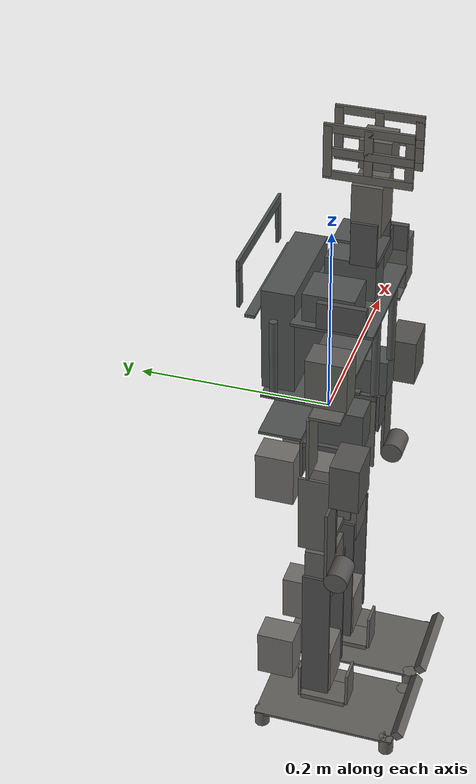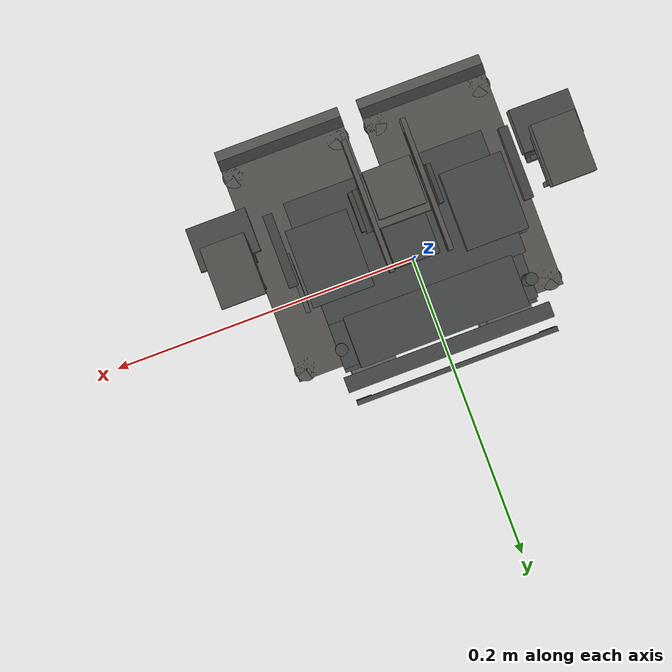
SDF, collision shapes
<sdf version="1.6">
<model name="onshape">
<link name="tronc">
<frame name="tronc_frame"><pose>0 0 0 0 -0 0</pose></frame>
<collision name="tronc_5_pillar_tube_collision_1">
<pose>-0.031 -0.054127 0.0909 1.80079e-24 -1.48609e-23 8.63328e-14</pose>
<geometry>
<cylinder><length>0.086</length><radius>0.004</radius></cylinder>
</geometry>
</collision>
<collision name="tronc_6_mx64_collision_1">
<pose>-0.046375 -0.026254 0.02 3.14159 1.48613e-23 -3.14159</pose>
<geometry>
<box><size>0.029 0.05 0.04</size></box>
</geometry>
</collision>
<collision name="tronc_8_mx64_collision_1">
<pose>0.05 -0.017127 0.1609 -3.14159 -1.5708 0</pose>
<geometry>
<box><size>0.029 0.05 0.04</size></box>
</geometry>
</collision>
<collision name="tronc_9_mx64_collision_1">
<pose>0.046375 -0.026254 0.02 3.14159 1.48609e-23 -3.14159</pose>
<geometry>
<box><size>0.029 0.05 0.04</size></box>
</geometry>
</collision>
<collision name="tronc_10_handle_collision_1">
<pose>7.29591e-15 0.071323 0.1899 1.5708 1.5708 0</pose>
<geometry>
<box><size>0.01 0.13 0.003</size></box>
</geometry>
</collision>
<collision name="tronc_10_handle_collision_2">
<pose>-0.06 0.071323 0.1649 1.5708 1.5708 0</pose>
<geometry>
<box><size>0.04 0.01 0.003</size></box>
</geometry>
</collision>
<collision name="tronc_10_handle_collision_3">
<pose>0.06 0.071323 0.1649 1.5708 1.5708 0</pose>
<geometry>
<box><size>0.04 0.01 0.003</size></box>
</geometry>
</collision>
<collision name="tronc_13_pillar_tube_collision_1">
<pose>0.0625 0.037873 0.0909 -3.14159 -1.48609e-23 8.63328e-14</pose>
<geometry>
<cylinder><length>0.086</length><radius>0.004</radius></cylinder>
</geometry>
</collision>
<collision name="tronc_14_mx64_collision_1">
<pose>-0.0505868 -0.017127 0.1609 3.14159 1.5708 0</pose>
<geometry>
<box><size>0.029 0.05 0.04</size></box>
</geometry>
</collision>
<collision name="tronc_18_torso_top_plate_nuc_collision_1">
<pose>1.52206e-14 -0.019127 0.1354 3.14159 1.48609e-23 -3.14159</pose>
<geometry>
<box><size>0.13 0.08 0.003</size></box>
</geometry>
</collision>
<collision name="tronc_21_torso_middle_plate_nuc_collision_1">
<pose>1.27053e-14 0.010373 0.0469 1.78736e-24 -1.48609e-23 8.63328e-14</pose>
<geometry>
<box><size>0.13 0.08 0.003</size></box>
</geometry>
</collision>
<collision name="tronc_22_pillar_tube_collision_1">
<pose>-0.0625 0.037873 0.0909 1.80079e-24 -1.48609e-23 8.63328e-14</pose>
<geometry>
<cylinder><length>0.086</length><radius>0.004</radius></cylinder>
</geometry>
</collision>
<collision name="tronc_23_nuc_collision_1">
<pose>1.24036e-14 0.035873 0.10615 1.5708 1.48609e-23 -3.14159</pose>
<geometry>
<box><size>0.11 0.11 0.033</size></box>
</geometry>
</collision>
<collision name="tronc_24_torso_bottom_plate_nuc_collision_1">
<pose>2.07506e-14 0.031123 0.00149996 -1.88432e-18 -5.37577e-17 8.62212e-14</pose>
<geometry>
<box><size>0.13 0.044 0.003</size></box>
</geometry>
</collision>
<collision name="tronc_24_torso_bottom_plate_nuc_collision_2">
<pose>-0.03 -0.007877 0.00149996 -1.88432e-18 -5.37577e-17 8.62212e-14</pose>
<geometry>
<box><size>0.01 0.035 0.003</size></box>
</geometry>
</collision>
<collision name="tronc_24_torso_bottom_plate_nuc_collision_3">
<pose>0.03 -0.007877 0.00149996 -1.88432e-18 -5.37577e-17 8.62212e-14</pose>
<geometry>
<box><size>0.01 0.035 0.003</size></box>
</geometry>
</collision>
<collision name="tronc_28_nuc_fix_collision_1">
<pose>8.35455e-15 0.059373 0.1384 -3.14159 1.79405e-24 -1.5708</pose>
<geometry>
<box><size>0.01 0.135 0.003</size></box>
</geometry>
</collision>
<collision name="tronc_32_mx64_collision_1">
<pose>2.55418e-14 -0.022127 0.1623 1.12133e-14 -2.28241e-15 -3.14159</pose>
<geometry>
<box><size>0.029 0.05 0.04</size></box>
</geometry>
</collision>
<collision name="tronc_33_pillar_tube_collision_1">
<pose>0.031 -0.054127 0.0914 1.80079e-24 -1.48609e-23 8.63328e-14</pose>
<geometry>
<cylinder><length>0.086</length><radius>0.004</radius></cylinder>
</geometry>
</collision>
<visual name="tronc_visual">
<pose>0 0 0 0 -0 0</pose>
<geometry>
<mesh><uri>file://tronc.stl</uri></mesh>
</geometry>
<material><ambient>0.312249 0.32483 0.318507 1</ambient><diffuse>0.312249 0.32483 0.318507 1</diffuse><specular>0.1 0.1 0.1 1</specular><emissive>0 0 0 0</emissive></material>
</visual>
<inertial>
<pose frame="tronc_frame">0.000185565 0.00052958 0.0922428 0 0 0</pose>
<mass>1.75912</mass>
<inertia><ixx>0.00823896</ixx><ixy>2.57494e-06</ixy><ixz>1.9734e-05</ixz><iyy>0.00915867</iyy><iyz>-0.000169433</iyz><izz>0.00511156</izz></inertia>
</inertial>
</link>

<link name="trunk">
<pose>0 0 0 0 0 0</pose>
<inertial>
<pose>0 0 0 0 0 0</pose>
<mass>1e-9</mass>
<inertia>
<ixx>0</ixx><ixy>0</ixy><ixz>0</ixz><iyy>0</iyy><iyz>0</iyz><izz>0</izz>
</inertia>
</inertial>
</link>
<joint name="trunk_frame" type="floating">
<pose>2.43796e-14 -0.011254 -0.0435 -5.7251e-17 -1.88432e-18 -1.5708</pose>
<parent>tronc</parent>
<child>trunk</child>
</joint>

<link name="head_base">
<pose>0 0 0 0 0 0</pose>
<inertial>
<pose>0 0 0 0 0 0</pose>
<mass>1e-9</mass>
<inertia>
<ixx>0</ixx><ixy>0</ixy><ixz>0</ixz><iyy>0</iyy><iyz>0</iyz><izz>0</izz>
</inertia>
</inertial>
</link>
<joint name="head_base_frame" type="floating">
<pose>2.67832e-14 -0.037127 0.1858 2.77556e-17 1.38778e-17 -1.5708</pose>
<parent>tronc</parent>
<child>head_base</child>
</joint>

<link name="u_block_1">
<frame name="u_block_1_frame"><pose>0 0 0 0 -0 0</pose></frame>
<collision name="u_block_1_0_u_base_motors_blocs_collision_1">
<pose>-0.046375 -0.016194 -0.00650004 3.14159 -1.79404e-24 1.5708</pose>
<geometry>
<box><size>0.05 0.03 0.006</size></box>
</geometry>
</collision>
<collision name="u_block_1_1_u_side_small_collision_1">
<pose>-0.046375 -0.042694 -0.0265 -1.5708 -7.12254e-17 5.40587e-13</pose>
<geometry>
<box><size>0.025 0.044 0.003</size></box>
</geometry>
</collision>
<collision name="u_block_1_2_u_side_small_with_trace_collision_1">
<pose>-0.046375 0.010646 -0.0265 -1.5708 2.0432e-16 -3.14159</pose>
<geometry>
<box><size>0.027 0.042 0.003</size></box>
</geometry>
</collision>
<visual name="u_block_1_visual">
<pose>0 0 0 0 -0 0</pose>
<geometry>
<mesh><uri>file://u_block_1.stl</uri></mesh>
</geometry>
<material><ambient>0.301961 0.301961 0.301961 1</ambient><diffuse>0.301961 0.301961 0.301961 1</diffuse><specular>0.1 0.1 0.1 1</specular><emissive>0 0 0 0</emissive></material>
</visual>
<inertial>
<pose frame="u_block_1_frame">-0.046375 -0.0173245 -0.0152654 0 0 0</pose>
<mass>0.0354404</mass>
<inertia><ixx>2.30163e-05</ixx><ixy>2.53866e-12</ixy><ixz>1.12453e-12</ixz><iyy>8.64707e-06</iyy><iyz>-7.76843e-07</iyz><izz>2.00312e-05</izz></inertia>
</inertial>
</link>

<link name="mx106_block_mir_1">
<frame name="mx106_block_mir_1_frame"><pose>0 0 0 0 -0 0</pose></frame>
<collision name="mx106_block_mir_1_1_mx106_collision_1">
<pose>-0.046375 -0.011254 -0.0585 1.5708 4.54672e-13 -1.5708</pose>
<geometry>
<box><size>0.03 0.055 0.04</size></box>
</geometry>
</collision>
<collision name="mx106_block_mir_1_6_mx106_collision_1">
<pose>-0.046375 0.038146 -0.0585 1.5708 2.89492e-13 5.40601e-13</pose>
<geometry>
<box><size>0.03 0.055 0.04</size></box>
</geometry>
</collision>
<visual name="mx106_block_mir_1_visual">
<pose>0 0 0 0 -0 0</pose>
<geometry>
<mesh><uri>file://mx106_block_mir_1.stl</uri></mesh>
</geometry>
<material><ambient>0.431842 0.425706 0.409343 1</ambient><diffuse>0.431842 0.425706 0.409343 1</diffuse><specular>0.1 0.1 0.1 1</specular><emissive>0 0 0 0</emissive></material>
</visual>
<inertial>
<pose frame="mx106_block_mir_1_frame">-0.0466794 0.00822885 -0.061598 0 0 0</pose>
<mass>0.427481</mass>
<inertia><ixx>0.000471323</ixx><ixy>5.61112e-06</ixy><ixz>-5.85755e-06</ixz><iyy>0.000182316</iyy><iyz>3.72337e-05</iyz><izz>0.000440632</izz></inertia>
</inertial>
</link>

<link name="right_knee_1">
<frame name="right_knee_1_frame"><pose>0 0 0 0 -0 0</pose></frame>
<collision name="right_knee_1_0_u_side_femur_mir_collision_1">
<pose>-0.018875 -0.011254 -0.083 1.5708 -2.0275e-15 1.5708</pose>
<geometry>
<box><size>0.04 0.09 0.003</size></box>
</geometry>
</collision>
<collision name="right_knee_1_5_mx106_collision_1">
<pose>-0.046375 -0.011254 -0.1685 -1.5708 -4.54672e-13 1.5708</pose>
<geometry>
<box><size>0.03 0.055 0.04</size></box>
</geometry>
</collision>
<collision name="right_knee_1_6_u_side_femur_collision_1">
<pose>-0.073875 -0.011254 -0.083 1.5708 -7.02166e-16 1.5708</pose>
<geometry>
<box><size>0.04 0.09 0.003</size></box>
</geometry>
</collision>
<collision name="right_knee_1_7_u_base_64_collision_1">
<pose>-0.046375 -0.011254 -0.126 -2.03443e-15 -1.74962e-17 -3.14159</pose>
<geometry>
<box><size>0.047 0.0275 0.006</size></box>
</geometry>
</collision>
<visual name="right_knee_1_visual">
<pose>0 0 0 0 -0 0</pose>
<geometry>
<mesh><uri>file://right_knee_1.stl</uri></mesh>
</geometry>
<material><ambient>0.367279 0.364193 0.355964 1</ambient><diffuse>0.367279 0.364193 0.355964 1</diffuse><specular>0.1 0.1 0.1 1</specular><emissive>0 0 0 0</emissive></material>
</visual>
<inertial>
<pose frame="right_knee_1_frame">-0.0466617 -0.0110297 -0.141534 0 0 0</pose>
<mass>0.269758</mass>
<inertia><ixx>0.000377081</ixx><ixy>9.26142e-06</ixy><ixz>4.25881e-06</ixz><iyy>0.000493067</iyy><iyz>6.91124e-07</iyz><izz>0.000182032</izz></inertia>
</inertial>
</link>

<link name="tibia_1">
<frame name="tibia_1_frame"><pose>0 0 0 0 -0 0</pose></frame>
<collision name="tibia_1_0_tibia_plate_collision_1">
<pose>-0.073875 -0.011254 -0.2505 1.5708 4.54871e-13 -1.5708</pose>
<geometry>
<box><size>0.03 0.165 0.003</size></box>
</geometry>
</collision>
<collision name="tibia_1_1_tibia_plate_collision_1">
<pose>-0.018875 -0.011254 -0.2505 1.5708 4.54982e-13 -1.5708</pose>
<geometry>
<box><size>0.03 0.165 0.003</size></box>
</geometry>
</collision>
<visual name="tibia_1_visual">
<pose>0 0 0 0 -0 0</pose>
<geometry>
<mesh><uri>file://tibia_1.stl</uri></mesh>
</geometry>
<material><ambient>0.301961 0.301961 0.301961 1</ambient><diffuse>0.301961 0.301961 0.301961 1</diffuse><specular>0.1 0.1 0.1 1</specular><emissive>0 0 0 0</emissive></material>
</visual>
<inertial>
<pose frame="tibia_1_frame">-0.046375 -0.00783231 -0.248107 0 0 0</pose>
<mass>0.0888437</mass>
<inertia><ixx>9.53741e-06</ixx><ixy>-3.80661e-11</ixy><ixz>6.12719e-06</ixz><iyy>0.000254651</iyy><iyz>1.44286e-11</iyz><izz>0.000245247</izz></inertia>
</inertial>
</link>

<link name="mx106_block_1">
<frame name="mx106_block_1_frame"><pose>0 0 0 0 -0 0</pose></frame>
<collision name="mx106_block_1_4_mx106_collision_1">
<pose>-0.046375 -0.011254 -0.3085 -1.5708 -4.55038e-13 1.5708</pose>
<geometry>
<box><size>0.03 0.055 0.04</size></box>
</geometry>
</collision>
<collision name="mx106_block_1_5_mx106_collision_1">
<pose>-0.046375 0.038146 -0.3085 -1.5708 -2.88835e-13 -3.14159</pose>
<geometry>
<box><size>0.03 0.055 0.04</size></box>
</geometry>
</collision>
<visual name="mx106_block_1_visual">
<pose>0 0 0 0 -0 0</pose>
<geometry>
<mesh><uri>file://mx106_block_1.stl</uri></mesh>
</geometry>
<material><ambient>0.431842 0.425706 0.409343 1</ambient><diffuse>0.431842 0.425706 0.409343 1</diffuse><specular>0.1 0.1 0.1 1</specular><emissive>0 0 0 0</emissive></material>
</visual>
<inertial>
<pose frame="mx106_block_1_frame">-0.0465498 0.0083344 -0.305402 0 0 0</pose>
<mass>0.427481</mass>
<inertia><ixx>0.000469432</ixx><ixy>8.86518e-06</ixy><ixz>5.93265e-06</ixz><iyy>0.00018247</iyy><iyz>-3.73023e-05</iyz><izz>0.000438896</izz></inertia>
</inertial>
</link>

<link name="right_foot_cleat_back_left">
<frame name="right_foot_cleat_back_left_frame"><pose>0 0 0 0 -0 0</pose></frame>
<collision name="right_foot_cleat_back_left_0_cleat_collision_1">
<pose>-0.089875 0.044276 -0.3735 3.14159 -8.93103e-14 2.94187</pose>
<geometry>
<cylinder><length>0.02</length><radius>0.008</radius></cylinder>
</geometry>
</collision>
<collision name="right_foot_cleat_back_left_3_cleat_collision_1">
<pose>-0.089875 -0.097324 -0.3735 3.14159 -8.90687e-14 2.94187</pose>
<geometry>
<cylinder><length>0.02</length><radius>0.008</radius></cylinder>
</geometry>
</collision>
<collision name="right_foot_cleat_back_left_8_u_side_small_collision_1">
<pose>-0.046375 -0.042694 -0.3405 1.5708 1.62985e-15 -3.14159</pose>
<geometry>
<box><size>0.025 0.044 0.003</size></box>
</geometry>
</collision>
<collision name="right_foot_cleat_back_left_11_cleat_collision_1">
<pose>-0.013875 -0.097324 -0.3735 -3.14159 -2.40911e-13 0.555221</pose>
<geometry>
<cylinder><length>0.02</length><radius>0.008</radius></cylinder>
</geometry>
</collision>
<collision name="right_foot_cleat_back_left_13_foot_plate_collision_1">
<pose>-0.051875 -0.026524 -0.365 -4.54368e-13 1.30359e-15 -3.14159</pose>
<geometry>
<box><size>0.09 0.155 0.003</size></box>
</geometry>
</collision>
<collision name="right_foot_cleat_back_left_14_u_side_small_with_trace_collision_1">
<pose>-0.046375 0.010646 -0.3405 1.5708 -4.08558e-15 5.42073e-13</pose>
<geometry>
<box><size>0.027 0.042 0.003</size></box>
</geometry>
</collision>
<collision name="right_foot_cleat_back_left_16_cleat_collision_1">
<pose>-0.013875 0.044276 -0.3735 -3.14159 1.3733e-13 -0.311457</pose>
<geometry>
<cylinder><length>0.02</length><radius>0.008</radius></cylinder>
</geometry>
</collision>
<collision name="right_foot_cleat_back_left_17_foot_protection_collision_1">
<pose>-0.051875 -0.110324 -0.351 -2.08226e-15 0.785398 1.5708</pose>
<geometry>
<box><size>0.01 0.09 0.01</size></box>
</geometry>
</collision>
<collision name="right_foot_cleat_back_left_18_u_base_motors_blocs_collision_1">
<pose>-0.046375 -0.016194 -0.3605 -1.47986e-15 -4.54146e-13 1.5708</pose>
<geometry>
<box><size>0.05 0.03 0.006</size></box>
</geometry>
</collision>
<visual name="right_foot_cleat_back_left_visual">
<pose>0 0 0 0 -0 0</pose>
<geometry>
<mesh><uri>file://right_foot_cleat_back_left.stl</uri></mesh>
</geometry>
<material><ambient>0.3811 0.375396 0.359887 1</ambient><diffuse>0.3811 0.375396 0.359887 1</diffuse><specular>0.1 0.1 0.1 1</specular><emissive>0 0 0 0</emissive></material>
</visual>
<inertial>
<pose frame="right_foot_cleat_back_left_frame">-0.0510597 -0.0390069 -0.360078 0 0 0</pose>
<mass>0.239067</mass>
<inertia><ixx>0.000628269</ixx><ixy>-4.22638e-06</ixy><ixz>-1.62931e-06</ixz><iyy>0.000201541</iyy><iyz>2.77688e-05</iyz><izz>0.000791512</izz></inertia>
</inertial>
</link>

<link name="right_foot">
<pose>0 0 0 0 0 0</pose>
<inertial>
<pose>0 0 0 0 0 0</pose>
<mass>1e-9</mass>
<inertia>
<ixx>0</ixx><ixy>0</ixy><ixz>0</ixz><iyy>0</iyy><iyz>0</iyz><izz>0</izz>
</inertia>
</inertial>
</link>
<joint name="right_foot_frame" type="floating">
<pose>-0.046375 -0.011024 -0.3835 -1.81711e-15 4.602e-13 -1.5708</pose>
<parent>right_foot_cleat_back_left</parent>
<child>right_foot</child>
</joint>

<joint name="right_ankle_roll" type="revolute">
<pose>-0.046375 0.012146 -0.3235 1.5708 -4.08558e-15 5.42073e-13</pose>
<parent>mx106_block_1</parent>
<child>right_foot_cleat_back_left</child>
<axis>
<xyz>-0 -0 1</xyz>
<limit><effort>10</effort><velocity>6</velocity></limit>
</axis>
</joint>

<joint name="right_ankle_pitch" type="revolute">
<pose>-0.072375 -0.011254 -0.3235 -1.5708 -4.55038e-13 1.5708</pose>
<parent>tibia_1</parent>
<child>mx106_block_1</child>
<axis>
<xyz>-0 -0 -1</xyz>
<limit><effort>10</effort><velocity>6</velocity></limit>
</axis>
</joint>

<joint name="right_knee" type="revolute">
<pose>-0.072375 -0.011254 -0.1835 1.5708 4.54871e-13 -1.5708</pose>
<parent>right_knee_1</parent>
<child>tibia_1</child>
<axis>
<xyz>0 0 -1</xyz>
<limit><effort>10</effort><velocity>6</velocity></limit>
</axis>
</joint>

<joint name="right_hip_pitch" type="revolute">
<pose>-0.072375 -0.011254 -0.0435 1.5708 -7.02166e-16 1.5708</pose>
<parent>mx106_block_mir_1</parent>
<child>right_knee_1</child>
<axis>
<xyz>0 0 1</xyz>
<limit><effort>10</effort><velocity>6</velocity></limit>
</axis>
</joint>

<joint name="right_hip_roll" type="revolute">
<pose>-0.046375 0.012146 -0.0435 1.5708 2.89492e-13 5.40601e-13</pose>
<parent>u_block_1</parent>
<child>mx106_block_mir_1</child>
<axis>
<xyz>0 0 1</xyz>
<limit><effort>10</effort><velocity>6</velocity></limit>
</axis>
</joint>

<joint name="right_hip_yaw" type="revolute">
<pose>-0.046375 -0.011254 -0.00350004 3.14159 -1.79404e-24 1.5708</pose>
<parent>tronc</parent>
<child>u_block_1</child>
<axis>
<xyz>0 0 -1</xyz>
<limit><effort>10</effort><velocity>6</velocity></limit>
</axis>
</joint>

<link name="u_block_2">
<frame name="u_block_2_frame"><pose>0 0 0 0 -0 0</pose></frame>
<collision name="u_block_2_0_u_base_motors_blocs_collision_1">
<pose>0.046375 -0.016194 -0.00649999 -3.14159 -3.13509e-16 1.5708</pose>
<geometry>
<box><size>0.05 0.03 0.006</size></box>
</geometry>
</collision>
<collision name="u_block_2_1_u_side_small_with_trace_collision_1">
<pose>0.046375 0.010646 -0.0265 -1.5708 -2.45939e-16 -3.14159</pose>
<geometry>
<box><size>0.027 0.042 0.003</size></box>
</geometry>
</collision>
<collision name="u_block_2_2_u_side_small_collision_1">
<pose>0.046375 -0.042694 -0.0265 -1.5708 1.6072e-16 8.61044e-14</pose>
<geometry>
<box><size>0.025 0.044 0.003</size></box>
</geometry>
</collision>
<visual name="u_block_2_visual">
<pose>0 0 0 0 -0 0</pose>
<geometry>
<mesh><uri>file://u_block_2.stl</uri></mesh>
</geometry>
<material><ambient>0.301961 0.301961 0.301961 1</ambient><diffuse>0.301961 0.301961 0.301961 1</diffuse><specular>0.1 0.1 0.1 1</specular><emissive>0 0 0 0</emissive></material>
</visual>
<inertial>
<pose frame="u_block_2_frame">0.046375 -0.0173245 -0.0152654 0 0 0</pose>
<mass>0.0354404</mass>
<inertia><ixx>2.30163e-05</ixx><ixy>2.53865e-12</ixy><ixz>1.12453e-12</ixz><iyy>8.64707e-06</iyy><iyz>-7.76843e-07</iyz><izz>2.00312e-05</izz></inertia>
</inertial>
</link>

<link name="mx106_block_2">
<frame name="mx106_block_2_frame"><pose>0 0 0 0 -0 0</pose></frame>
<collision name="mx106_block_2_4_mx106_collision_1">
<pose>0.046375 0.038146 -0.0585 1.5708 2.88507e-13 8.6382e-14</pose>
<geometry>
<box><size>0.03 0.055 0.04</size></box>
</geometry>
</collision>
<collision name="mx106_block_2_11_mx106_collision_1">
<pose>0.046375 -0.011254 -0.0585 1.5708 -1.45178e-16 1.5708</pose>
<geometry>
<box><size>0.03 0.055 0.04</size></box>
</geometry>
</collision>
<visual name="mx106_block_2_visual">
<pose>0 0 0 0 -0 0</pose>
<geometry>
<mesh><uri>file://mx106_block_2.stl</uri></mesh>
</geometry>
<material><ambient>0.431842 0.425706 0.409343 1</ambient><diffuse>0.431842 0.425706 0.409343 1</diffuse><specular>0.1 0.1 0.1 1</specular><emissive>0 0 0 0</emissive></material>
</visual>
<inertial>
<pose frame="mx106_block_2_frame">0.0465498 0.0083344 -0.061598 0 0 0</pose>
<mass>0.427481</mass>
<inertia><ixx>0.000469848</ixx><ixy>-8.20784e-06</ixy><ixz>6.21669e-06</ixz><iyy>0.000182055</iyy><iyz>3.82823e-05</iyz><izz>0.000438896</izz></inertia>
</inertial>
</link>

<link name="left_knee_1">
<frame name="left_knee_1_frame"><pose>0 0 0 0 -0 0</pose></frame>
<collision name="left_knee_1_1_u_base_64_collision_1">
<pose>0.046375 -0.011254 -0.126 1.45178e-16 2.27835e-16 8.54033e-14</pose>
<geometry>
<box><size>0.047 0.0275 0.006</size></box>
</geometry>
</collision>
<collision name="left_knee_1_2_u_side_femur_collision_1">
<pose>0.073875 -0.011254 -0.083 1.5708 6.44779e-16 -1.5708</pose>
<geometry>
<box><size>0.04 0.09 0.003</size></box>
</geometry>
</collision>
<collision name="left_knee_1_4_u_side_femur_mir_collision_1">
<pose>0.018875 -0.011254 -0.083 1.5708 1.29857e-16 -1.5708</pose>
<geometry>
<box><size>0.04 0.09 0.003</size></box>
</geometry>
</collision>
<collision name="left_knee_1_7_mx106_collision_1">
<pose>0.046375 -0.011254 -0.1685 -1.5708 4.5425e-13 -1.5708</pose>
<geometry>
<box><size>0.03 0.055 0.04</size></box>
</geometry>
</collision>
<visual name="left_knee_1_visual">
<pose>0 0 0 0 -0 0</pose>
<geometry>
<mesh><uri>file://left_knee_1.stl</uri></mesh>
</geometry>
<material><ambient>0.367279 0.364193 0.355964 1</ambient><diffuse>0.367279 0.364193 0.355964 1</diffuse><specular>0.1 0.1 0.1 1</specular><emissive>0 0 0 0</emissive></material>
</visual>
<inertial>
<pose frame="left_knee_1_frame">0.0468476 -0.0111969 -0.141534 0 0 0</pose>
<mass>0.269758</mass>
<inertia><ixx>0.000377165</ixx><ixy>-9.38144e-06</ixy><ixz>-2.92616e-06</ixz><iyy>0.000492957</iyy><iyz>-1.29719e-06</iyz><izz>0.000182006</izz></inertia>
</inertial>
</link>

<link name="tibia_2">
<frame name="tibia_2_frame"><pose>0 0 0 0 -0 0</pose></frame>
<collision name="tibia_2_0_tibia_plate_collision_1">
<pose>0.073875 -0.011254 -0.2505 1.5708 4.5456e-13 -1.5708</pose>
<geometry>
<box><size>0.03 0.165 0.003</size></box>
</geometry>
</collision>
<collision name="tibia_2_1_tibia_plate_collision_1">
<pose>0.018875 -0.011254 -0.2505 1.5708 4.54864e-13 -1.5708</pose>
<geometry>
<box><size>0.03 0.165 0.003</size></box>
</geometry>
</collision>
<visual name="tibia_2_visual">
<pose>0 0 0 0 -0 0</pose>
<geometry>
<mesh><uri>file://tibia_2.stl</uri></mesh>
</geometry>
<material><ambient>0.301961 0.301961 0.301961 1</ambient><diffuse>0.301961 0.301961 0.301961 1</diffuse><specular>0.1 0.1 0.1 1</specular><emissive>0 0 0 0</emissive></material>
</visual>
<inertial>
<pose frame="tibia_2_frame">0.046375 -0.00783231 -0.248107 0 0 0</pose>
<mass>0.0888437</mass>
<inertia><ixx>9.53741e-06</ixx><ixy>-3.80661e-11</ixy><ixz>6.12719e-06</ixz><iyy>0.000254651</iyy><iyz>1.44286e-11</iyz><izz>0.000245247</izz></inertia>
</inertial>
</link>

<link name="mx106_block_mir_2">
<frame name="mx106_block_mir_2_frame"><pose>0 0 0 0 -0 0</pose></frame>
<collision name="mx106_block_mir_2_3_mx106_collision_1">
<pose>0.046375 -0.011254 -0.3085 -1.5708 4.5425e-13 -1.5708</pose>
<geometry>
<box><size>0.03 0.055 0.04</size></box>
</geometry>
</collision>
<collision name="mx106_block_mir_2_7_mx106_collision_1">
<pose>0.046375 0.038146 -0.3085 -1.5708 -2.89839e-13 -3.14159</pose>
<geometry>
<box><size>0.03 0.055 0.04</size></box>
</geometry>
</collision>
<visual name="mx106_block_mir_2_visual">
<pose>0 0 0 0 -0 0</pose>
<geometry>
<mesh><uri>file://mx106_block_mir_2.stl</uri></mesh>
</geometry>
<material><ambient>0.431842 0.425706 0.409343 1</ambient><diffuse>0.431842 0.425706 0.409343 1</diffuse><specular>0.1 0.1 0.1 1</specular><emissive>0 0 0 0</emissive></material>
</visual>
<inertial>
<pose frame="mx106_block_mir_2_frame">0.0466794 0.00822885 -0.305402 0 0 0</pose>
<mass>0.427481</mass>
<inertia><ixx>0.000471153</ixx><ixy>-4.80698e-06</ixy><ixz>-6.14159e-06</ixz><iyy>0.000182486</iyy><iyz>-3.82137e-05</iyz><izz>0.000440632</izz></inertia>
</inertial>
</link>

<link name="left_foot_cleat_front_right">
<frame name="left_foot_cleat_front_right_frame"><pose>0 0 0 0 -0 0</pose></frame>
<collision name="left_foot_cleat_front_right_0_foot_protection_collision_1">
<pose>0.051875 -0.110324 -0.351 1.06922e-14 0.785398 1.5708</pose>
<geometry>
<box><size>0.01 0.09 0.01</size></box>
</geometry>
</collision>
<collision name="left_foot_cleat_front_right_2_cleat_collision_1">
<pose>0.089875 0.044276 -0.3735 3.14159 -4.26267e-13 2.66106</pose>
<geometry>
<cylinder><length>0.02</length><radius>0.008</radius></cylinder>
</geometry>
</collision>
<collision name="left_foot_cleat_front_right_4_u_side_small_collision_1">
<pose>0.046375 -0.042694 -0.3405 1.5708 1.00014e-16 -3.14159</pose>
<geometry>
<box><size>0.025 0.044 0.003</size></box>
</geometry>
</collision>
<collision name="left_foot_cleat_front_right_6_cleat_collision_1">
<pose>0.089875 -0.097324 -0.3735 3.14159 -4.28592e-13 2.66106</pose>
<geometry>
<cylinder><length>0.02</length><radius>0.008</radius></cylinder>
</geometry>
</collision>
<collision name="left_foot_cleat_front_right_12_u_base_motors_blocs_collision_1">
<pose>0.046375 -0.016194 -0.3605 6.56132e-15 -9.09768e-13 1.5708</pose>
<geometry>
<box><size>0.05 0.03 0.006</size></box>
</geometry>
</collision>
<collision name="left_foot_cleat_front_right_14_cleat_collision_1">
<pose>0.013875 -0.097324 -0.3735 3.14159 -4.26989e-13 2.66106</pose>
<geometry>
<cylinder><length>0.02</length><radius>0.008</radius></cylinder>
</geometry>
</collision>
<collision name="left_foot_cleat_front_right_15_cleat_collision_1">
<pose>0.013875 0.044276 -0.3735 3.14159 -4.24818e-13 2.66106</pose>
<geometry>
<cylinder><length>0.02</length><radius>0.008</radius></cylinder>
</geometry>
</collision>
<collision name="left_foot_cleat_front_right_18_u_side_small_with_trace_collision_1">
<pose>0.046375 0.010646 -0.3405 1.5708 6.06172e-15 8.5963e-14</pose>
<geometry>
<box><size>0.027 0.042 0.003</size></box>
</geometry>
</collision>
<collision name="left_foot_cleat_front_right_19_foot_plate_collision_1">
<pose>0.051875 -0.026524 -0.365 -8.70248e-13 1.24944e-14 -3.14159</pose>
<geometry>
<box><size>0.09 0.155 0.003</size></box>
</geometry>
</collision>
<visual name="left_foot_cleat_front_right_visual">
<pose>0 0 0 0 -0 0</pose>
<geometry>
<mesh><uri>file://left_foot_cleat_front_right.stl</uri></mesh>
</geometry>
<material><ambient>0.3811 0.375396 0.359887 1</ambient><diffuse>0.3811 0.375396 0.359887 1</diffuse><specular>0.1 0.1 0.1 1</specular><emissive>0 0 0 0</emissive></material>
</visual>
<inertial>
<pose frame="left_foot_cleat_front_right_frame">0.0510597 -0.0390069 -0.360078 0 0 0</pose>
<mass>0.239067</mass>
<inertia><ixx>0.000628263</ixx><ixy>4.22638e-06</ixy><ixz>1.60503e-06</ixz><iyy>0.000201541</iyy><iyz>2.77688e-05</iyz><izz>0.000791517</izz></inertia>
</inertial>
</link>

<link name="left_foot">
<pose>0 0 0 0 0 0</pose>
<inertial>
<pose>0 0 0 0 0 0</pose>
<mass>1e-9</mass>
<inertia>
<ixx>0</ixx><ixy>0</ixy><ixz>0</ixz><iyy>0</iyy><iyz>0</iyz><izz>0</izz>
</inertia>
</inertial>
</link>
<joint name="left_foot_frame" type="floating">
<pose>0.046375 -0.011024 -0.3835 3.11322e-14 9.09916e-13 -1.5708</pose>
<parent>left_foot_cleat_front_right</parent>
<child>left_foot</child>
</joint>

<joint name="left_ankle_roll" type="revolute">
<pose>0.046375 0.012146 -0.3235 1.5708 6.06172e-15 8.5963e-14</pose>
<parent>mx106_block_mir_2</parent>
<child>left_foot_cleat_front_right</child>
<axis>
<xyz>-0 -0 1</xyz>
<limit><effort>10</effort><velocity>6</velocity></limit>
</axis>
</joint>

<joint name="left_ankle_pitch" type="revolute">
<pose>0.072375 -0.011254 -0.3235 -1.5708 4.5425e-13 -1.5708</pose>
<parent>tibia_2</parent>
<child>mx106_block_mir_2</child>
<axis>
<xyz>0 0 1</xyz>
<limit><effort>10</effort><velocity>6</velocity></limit>
</axis>
</joint>

<joint name="left_knee" type="revolute">
<pose>0.072375 -0.011254 -0.1835 1.5708 4.5456e-13 -1.5708</pose>
<parent>left_knee_1</parent>
<child>tibia_2</child>
<axis>
<xyz>-0 -0 -1</xyz>
<limit><effort>10</effort><velocity>6</velocity></limit>
</axis>
</joint>

<joint name="left_hip_pitch" type="revolute">
<pose>0.072375 -0.011254 -0.0435 1.5708 6.44779e-16 -1.5708</pose>
<parent>mx106_block_2</parent>
<child>left_knee_1</child>
<axis>
<xyz>-0 -0 -1</xyz>
<limit><effort>10</effort><velocity>6</velocity></limit>
</axis>
</joint>

<joint name="left_hip_roll" type="revolute">
<pose>0.046375 0.012146 -0.0435 1.5708 2.88507e-13 8.6382e-14</pose>
<parent>u_block_2</parent>
<child>mx106_block_2</child>
<axis>
<xyz>0 0 1</xyz>
<limit><effort>10</effort><velocity>6</velocity></limit>
</axis>
</joint>

<joint name="left_hip_yaw" type="revolute">
<pose>0.046375 -0.011254 -0.00349999 -3.14159 -3.13509e-16 1.5708</pose>
<parent>tronc</parent>
<child>u_block_2</child>
<axis>
<xyz>0 0 -1</xyz>
<limit><effort>10</effort><velocity>6</velocity></limit>
</axis>
</joint>

<link name="u_shoulder_1">
<frame name="u_shoulder_1_frame"><pose>0 0 0 0 -0 0</pose></frame>
<collision name="u_shoulder_1_2_u_base_64_collision_1">
<pose>0.0765 -0.032127 0.1609 -1.5708 -4.55145e-13 -1.5708</pose>
<geometry>
<box><size>0.047 0.0275 0.006</size></box>
</geometry>
</collision>
<visual name="u_shoulder_1_visual">
<pose>0 0 0 0 -0 0</pose>
<geometry>
<mesh><uri>file://u_shoulder_1.stl</uri></mesh>
</geometry>
<material><ambient>0.301961 0.301961 0.301961 1</ambient><diffuse>0.301961 0.301961 0.301961 1</diffuse><specular>0.1 0.1 0.1 1</specular><emissive>0 0 0 0</emissive></material>
</visual>
<inertial>
<pose frame="u_shoulder_1_frame">0.0902829 -0.032127 0.15604 0 0 0</pose>
<mass>0.042898</mass>
<inertia><ixx>2.33892e-05</ixx><ixy>-1.80265e-06</ixy><ixz>1.95873e-06</ixz><iyy>1.58135e-05</iyy><iyz>6.85626e-18</iyz><izz>3.00983e-05</izz></inertia>
</inertial>
</link>

<link name="left_humerus_1">
<frame name="left_humerus_1_frame"><pose>0 0 0 0 -0 0</pose></frame>
<collision name="left_humerus_1_3_mx64_collision_1">
<pose>0.1085 -0.031127 0.1159 1.5708 5.82834e-17 8.66163e-14</pose>
<geometry>
<box><size>0.029 0.05 0.04</size></box>
</geometry>
</collision>
<collision name="left_humerus_1_6_humerus_plate_collision_1">
<pose>0.1085 -0.0154534 0.0389 1.5708 -4.53804e-13 -1.5708</pose>
<geometry>
<box><size>0.003 0.07 0.03</size></box>
</geometry>
</collision>
<collision name="left_humerus_1_6_humerus_plate_collision_2">
<pose>0.1085 -0.0314534 0.0769 1.5708 -4.53804e-13 -1.5708</pose>
<geometry>
<box><size>0.03 0.003 0.03</size></box>
</geometry>
</collision>
<visual name="left_humerus_1_visual">
<pose>0 0 0 0 -0 0</pose>
<geometry>
<mesh><uri>file://left_humerus_1.stl</uri></mesh>
</geometry>
<material><ambient>0.363401 0.358167 0.34376 1</ambient><diffuse>0.363401 0.358167 0.34376 1</diffuse><specular>0.1 0.1 0.1 1</specular><emissive>0 0 0 0</emissive></material>
</visual>
<inertial>
<pose frame="left_humerus_1_frame">0.107647 -0.0297747 0.0932601 0 0 0</pose>
<mass>0.214223</mass>
<inertia><ixx>0.000334917</ixx><ixy>-1.86651e-06</ixy><ixz>-1.52998e-05</ixz><iyy>0.000332944</iyy><iyz>1.1514e-05</iyz><izz>7.82583e-05</izz></inertia>
</inertial>
</link>

<link name="left_radius_1">
<frame name="left_radius_1_frame"><pose>0 0 0 0 -0 0</pose></frame>
<collision name="left_radius_1_2_mx64_collision_1">
<pose>0.1085 -0.0529534 0.00389996 1.5708 4.53415e-13 1.5708</pose>
<geometry>
<box><size>0.029 0.05 0.04</size></box>
</geometry>
</collision>
<collision name="left_radius_1_5_radius_plate_collision_1">
<pose>0.1085 -0.0349534 -0.0796 1.5708 -9.08273e-13 -1.5708</pose>
<geometry>
<box><size>0.003 0.085 0.03</size></box>
</geometry>
</collision>
<collision name="left_radius_1_5_radius_plate_collision_2">
<pose>0.1085 -0.0454534 -0.1221 1.5708 -9.08273e-13 -1.5708</pose>
<geometry>
<cylinder><length>0.03</length><radius>0.012</radius></cylinder>
</geometry>
</collision>
<visual name="left_radius_1_visual">
<pose>0 0 0 0 -0 0</pose>
<geometry>
<mesh><uri>file://left_radius_1.stl</uri></mesh>
</geometry>
<material><ambient>0.330671 0.326648 0.315918 1</ambient><diffuse>0.330671 0.326648 0.315918 1</diffuse><specular>0.1 0.1 0.1 1</specular><emissive>0 0 0 0</emissive></material>
</visual>
<inertial>
<pose frame="left_radius_1_frame">0.108122 -0.0504197 -0.0181398 0 0 0</pose>
<mass>0.20688</mass>
<inertia><ixx>0.000296486</ixx><ixy>-5.78228e-06</ixy><ixz>4.26778e-06</ixz><iyy>0.000368472</iyy><iyz>3.13705e-05</iyz><izz>0.000131479</izz></inertia>
</inertial>
</link>

<joint name="left_elbow" type="revolute">
<pose>0.132 -0.0529534 0.0189 1.5708 4.53415e-13 1.5708</pose>
<parent>left_humerus_1</parent>
<child>left_radius_1</child>
<axis>
<xyz>0 0 1</xyz>
<limit><effort>10</effort><velocity>6</velocity></limit>
</axis>
</joint>

<joint name="left_shoulder_roll" type="revolute">
<pose>0.1085 -0.054627 0.1309 1.5708 5.82834e-17 8.66163e-14</pose>
<parent>u_shoulder_1</parent>
<child>left_humerus_1</child>
<axis>
<xyz>0 0 1</xyz>
<limit><effort>10</effort><velocity>6</velocity></limit>
</axis>
</joint>

<joint name="left_shoulder_pitch" type="revolute">
<pose>0.0735 -0.032127 0.1609 -1.5708 -4.55145e-13 -1.5708</pose>
<parent>tronc</parent>
<child>u_shoulder_1</child>
<axis>
<xyz>-0 -0 1</xyz>
<limit><effort>10</effort><velocity>6</velocity></limit>
</axis>
</joint>

<link name="u_shoulder_2">
<frame name="u_shoulder_2_frame"><pose>0 0 0 0 -0 0</pose></frame>
<collision name="u_shoulder_2_1_u_base_64_collision_1">
<pose>-0.0770868 -0.032127 0.1609 -1.5708 -6.38201e-16 1.5708</pose>
<geometry>
<box><size>0.047 0.0275 0.006</size></box>
</geometry>
</collision>
<visual name="u_shoulder_2_visual">
<pose>0 0 0 0 -0 0</pose>
<geometry>
<mesh><uri>file://u_shoulder_2.stl</uri></mesh>
</geometry>
<material><ambient>0.301961 0.301961 0.301961 1</ambient><diffuse>0.301961 0.301961 0.301961 1</diffuse><specular>0.1 0.1 0.1 1</specular><emissive>0 0 0 0</emissive></material>
</visual>
<inertial>
<pose frame="u_shoulder_2_frame">-0.0908697 -0.032127 0.15604 0 0 0</pose>
<mass>0.042898</mass>
<inertia><ixx>2.33892e-05</ixx><ixy>1.80265e-06</ixy><ixz>-1.95873e-06</ixz><iyy>1.58135e-05</iyy><iyz>-3.46013e-19</iyz><izz>3.00983e-05</izz></inertia>
</inertial>
</link>

<link name="right_humerus_1">
<frame name="right_humerus_1_frame"><pose>0 0 0 0 -0 0</pose></frame>
<collision name="right_humerus_1_3_humerus_plate_collision_1">
<pose>-0.109087 -0.014627 0.0389 1.5708 -4.00903e-17 -1.5708</pose>
<geometry>
<box><size>0.003 0.07 0.03</size></box>
</geometry>
</collision>
<collision name="right_humerus_1_3_humerus_plate_collision_2">
<pose>-0.109087 -0.030627 0.0769 1.5708 -4.00903e-17 -1.5708</pose>
<geometry>
<box><size>0.03 0.003 0.03</size></box>
</geometry>
</collision>
<collision name="right_humerus_1_7_mx64_collision_1">
<pose>-0.109087 -0.031127 0.1159 1.5708 -1.8792e-17 8.54838e-14</pose>
<geometry>
<box><size>0.029 0.05 0.04</size></box>
</geometry>
</collision>
<visual name="right_humerus_1_visual">
<pose>0 0 0 0 -0 0</pose>
<geometry>
<mesh><uri>file://right_humerus_1.stl</uri></mesh>
</geometry>
<material><ambient>0.363401 0.358167 0.34376 1</ambient><diffuse>0.363401 0.358167 0.34376 1</diffuse><specular>0.1 0.1 0.1 1</specular><emissive>0 0 0 0</emissive></material>
</visual>
<inertial>
<pose frame="right_humerus_1_frame">-0.108043 -0.0292607 0.0932601 0 0 0</pose>
<mass>0.214223</mass>
<inertia><ixx>0.000335074</ixx><ixy>2.98809e-06</ixy><ixz>1.0013e-05</ixz><iyy>0.000332796</iyy><iyz>1.45378e-05</iyz><izz>7.82667e-05</izz></inertia>
</inertial>
</link>

<link name="right_radius_1">
<frame name="right_radius_1_frame"><pose>0 0 0 0 -0 0</pose></frame>
<collision name="right_radius_1_2_radius_plate_collision_1">
<pose>-0.109087 -0.034127 -0.0796 1.5708 -3.01274e-16 -1.5708</pose>
<geometry>
<box><size>0.003 0.085 0.03</size></box>
</geometry>
</collision>
<collision name="right_radius_1_2_radius_plate_collision_2">
<pose>-0.109087 -0.044627 -0.1221 1.5708 -3.01274e-16 -1.5708</pose>
<geometry>
<cylinder><length>0.03</length><radius>0.012</radius></cylinder>
</geometry>
</collision>
<collision name="right_radius_1_4_mx64_collision_1">
<pose>-0.109087 -0.052127 0.00389996 1.5708 -4.00903e-17 -1.5708</pose>
<geometry>
<box><size>0.029 0.05 0.04</size></box>
</geometry>
</collision>
<visual name="right_radius_1_visual">
<pose>0 0 0 0 -0 0</pose>
<geometry>
<mesh><uri>file://right_radius_1.stl</uri></mesh>
</geometry>
<material><ambient>0.330671 0.326648 0.315918 1</ambient><diffuse>0.330671 0.326648 0.315918 1</diffuse><specular>0.1 0.1 0.1 1</specular><emissive>0 0 0 0</emissive></material>
</visual>
<inertial>
<pose frame="right_radius_1_frame">-0.108951 -0.0497915 -0.0181398 0 0 0</pose>
<mass>0.20688</mass>
<inertia><ixx>0.00029654</ixx><ixy>6.16695e-06</ixy><ixz>-7.02898e-06</ixz><iyy>0.000368643</iyy><iyz>3.08971e-05</iyz><izz>0.000131704</izz></inertia>
</inertial>
</link>

<joint name="right_elbow" type="revolute">
<pose>-0.132587 -0.052127 0.0189 1.5708 -4.00903e-17 -1.5708</pose>
<parent>right_humerus_1</parent>
<child>right_radius_1</child>
<axis>
<xyz>-0 -0 -1</xyz>
<limit><effort>10</effort><velocity>6</velocity></limit>
</axis>
</joint>

<joint name="right_shoulder_roll" type="revolute">
<pose>-0.109087 -0.054627 0.1309 1.5708 -1.8792e-17 8.54838e-14</pose>
<parent>u_shoulder_2</parent>
<child>right_humerus_1</child>
<axis>
<xyz>0 0 1</xyz>
<limit><effort>10</effort><velocity>6</velocity></limit>
</axis>
</joint>

<joint name="right_shoulder_pitch" type="revolute">
<pose>-0.0740868 -0.032127 0.1609 -1.5708 -6.38201e-16 1.5708</pose>
<parent>tronc</parent>
<child>u_shoulder_2</child>
<axis>
<xyz>0 0 -1</xyz>
<limit><effort>10</effort><velocity>6</velocity></limit>
</axis>
</joint>

<link name="u_neck_1">
<frame name="u_neck_1_frame"><pose>0 0 0 0 -0 0</pose></frame>
<collision name="u_neck_1_0_u_base_64_collision_1">
<pose>2.67834e-14 -0.037127 0.1888 1.12133e-14 -2.28241e-15 -3.14159</pose>
<geometry>
<box><size>0.047 0.0275 0.006</size></box>
</geometry>
</collision>
<collision name="u_neck_1_1_u_side_small_collision_1">
<pose>0.025 -0.037127 0.2088 1.5708 -1.15425e-14 -1.5708</pose>
<geometry>
<box><size>0.025 0.044 0.003</size></box>
</geometry>
</collision>
<collision name="u_neck_1_2_u_side_small_collision_1">
<pose>-0.025 -0.037127 0.2088 1.5708 1.19741e-14 1.5708</pose>
<geometry>
<box><size>0.025 0.044 0.003</size></box>
</geometry>
</collision>
<visual name="u_neck_1_visual">
<pose>0 0 0 0 -0 0</pose>
<geometry>
<mesh><uri>file://u_neck_1.stl</uri></mesh>
</geometry>
<material><ambient>0.301961 0.301961 0.301961 1</ambient><diffuse>0.301961 0.301961 0.301961 1</diffuse><specular>0.1 0.1 0.1 1</specular><emissive>0 0 0 0</emissive></material>
</visual>
<inertial>
<pose frame="u_neck_1_frame">2.68054e-14 -0.037127 0.198692 0 0 0</pose>
<mass>0.0362092</mass>
<inertia><ixx>6.41955e-06</ixx><ixy>4.27371e-12</ixy><ixz>3.64701e-13</ixz><iyy>2.38199e-05</iyy><iyz>1.39399e-20</iyz><izz>2.02973e-05</izz></inertia>
</inertial>
</link>

<link name="head_1">
<frame name="head_1_frame"><pose>0 0 0 0 -0 0</pose></frame>
<collision name="head_1_3_head_plate_collision_1">
<pose>0.0185 0.000373 0.2956 1.5708 1.10158e-13 -1.5708</pose>
<geometry>
<box><size>0.008 0.05 0.003</size></box>
</geometry>
</collision>
<collision name="head_1_3_head_plate_collision_2">
<pose>0.0185 -0.037127 0.2956 1.5708 1.10158e-13 -1.5708</pose>
<geometry>
<box><size>0.008 0.05 0.003</size></box>
</geometry>
</collision>
<collision name="head_1_3_head_plate_collision_3">
<pose>0.0185 -0.074627 0.2956 1.5708 1.10158e-13 -1.5708</pose>
<geometry>
<box><size>0.008 0.05 0.003</size></box>
</geometry>
</collision>
<collision name="head_1_3_head_plate_collision_4">
<pose>0.0185 -0.037127 0.2726 1.5708 1.10158e-13 -1.5708</pose>
<geometry>
<box><size>0.083 0.008 0.003</size></box>
</geometry>
</collision>
<collision name="head_1_3_head_plate_collision_5">
<pose>0.0185 -0.037127 0.2956 1.5708 1.10158e-13 -1.5708</pose>
<geometry>
<box><size>0.083 0.008 0.003</size></box>
</geometry>
</collision>
<collision name="head_1_3_head_plate_collision_6">
<pose>0.0185 -0.037127 0.3186 1.5708 1.10158e-13 -1.5708</pose>
<geometry>
<box><size>0.083 0.008 0.003</size></box>
</geometry>
</collision>
<collision name="head_1_4_ptgrey_camera_collision_1">
<pose>7.40131e-15 -0.0420952 0.29485 1.12283e-13 3.18082e-15 8.38209e-14</pose>
<geometry>
<box><size>0.03 0.03 0.028</size></box>
</geometry>
</collision>
<collision name="head_1_5_head_plate_collision_1">
<pose>-0.0185 0.000373 0.2956 1.5708 1.1564e-13 -1.5708</pose>
<geometry>
<box><size>0.008 0.05 0.003</size></box>
</geometry>
</collision>
<collision name="head_1_5_head_plate_collision_2">
<pose>-0.0185 -0.037127 0.2956 1.5708 1.1564e-13 -1.5708</pose>
<geometry>
<box><size>0.008 0.05 0.003</size></box>
</geometry>
</collision>
<collision name="head_1_5_head_plate_collision_3">
<pose>-0.0185 -0.074627 0.2956 1.5708 1.1564e-13 -1.5708</pose>
<geometry>
<box><size>0.008 0.05 0.003</size></box>
</geometry>
</collision>
<collision name="head_1_5_head_plate_collision_4">
<pose>-0.0185 -0.037127 0.2726 1.5708 1.1564e-13 -1.5708</pose>
<geometry>
<box><size>0.083 0.008 0.003</size></box>
</geometry>
</collision>
<collision name="head_1_5_head_plate_collision_5">
<pose>-0.0185 -0.037127 0.2956 1.5708 1.1564e-13 -1.5708</pose>
<geometry>
<box><size>0.083 0.008 0.003</size></box>
</geometry>
</collision>
<collision name="head_1_5_head_plate_collision_6">
<pose>-0.0185 -0.037127 0.3186 1.5708 1.1564e-13 -1.5708</pose>
<geometry>
<box><size>0.083 0.008 0.003</size></box>
</geometry>
</collision>
<collision name="head_1_7_mx64_collision_1">
<pose>1.69274e-14 -0.037127 0.2408 -1.5708 -1.19741e-14 -1.5708</pose>
<geometry>
<box><size>0.029 0.05 0.04</size></box>
</geometry>
</collision>
<visual name="head_1_visual">
<pose>0 0 0 0 -0 0</pose>
<geometry>
<mesh><uri>file://head_1.stl</uri></mesh>
</geometry>
<material><ambient>0.384901 0.378788 0.360771 1</ambient><diffuse>0.384901 0.378788 0.360771 1</diffuse><specular>0.1 0.1 0.1 1</specular><emissive>0 0 0 0</emissive></material>
</visual>
<inertial>
<pose frame="head_1_frame">-0.000220887 -0.0384008 0.260152 0 0 0</pose>
<mass>0.228227</mass>
<inertia><ixx>0.000204774</ixx><ixy>-5.99156e-06</ixy><ixz>-6.51603e-06</ixz><iyy>0.000251524</iyy><iyz>7.61451e-06</iyz><izz>0.000103974</izz></inertia>
</inertial>
</link>

<link name="camera">
<pose>0 0 0 0 0 0</pose>
<inertial>
<pose>0 0 0 0 0 0</pose>
<mass>1e-9</mass>
<inertia>
<ixx>0</ixx><ixy>0</ixy><ixz>0</ixz><iyy>0</iyy><iyz>0</iyz><izz>0</izz>
</inertia>
</inertial>
</link>
<joint name="camera_frame" type="floating">
<pose>9.02158e-15 -0.06206 0.29485 -1.5708 -3.22939e-15 -3.14159</pose>
<parent>head_1</parent>
<child>camera</child>
</joint>

<link name="vive">
<pose>0 0 0 0 0 0</pose>
<inertial>
<pose>0 0 0 0 0 0</pose>
<mass>1e-9</mass>
<inertia>
<ixx>0</ixx><ixy>0</ixy><ixz>0</ixz><iyy>0</iyy><iyz>0</iyz><izz>0</izz>
</inertia>
</inertial>
</link>
<joint name="vive_frame" type="floating">
<pose>7.13318e-15 -0.037127 0.3256 2.33017e-15 -1.09718e-13 1.5708</pose>
<parent>head_1</parent>
<child>vive</child>
</joint>

<joint name="head_pitch" type="revolute">
<pose>0.0235 -0.037127 0.2258 -1.5708 -1.19741e-14 -1.5708</pose>
<parent>u_neck_1</parent>
<child>head_1</child>
<axis>
<xyz>0 0 1</xyz>
<limit><effort>10</effort><velocity>6</velocity></limit>
</axis>
</joint>

<joint name="head_yaw" type="revolute">
<pose>2.67834e-14 -0.037127 0.1858 1.12133e-14 -2.28241e-15 -3.14159</pose>
<parent>tronc</parent>
<child>u_neck_1</child>
<axis>
<xyz>-0 -0 1</xyz>
<limit><effort>10</effort><velocity>6</velocity></limit>
</axis>
</joint>

</model>
</sdf>
